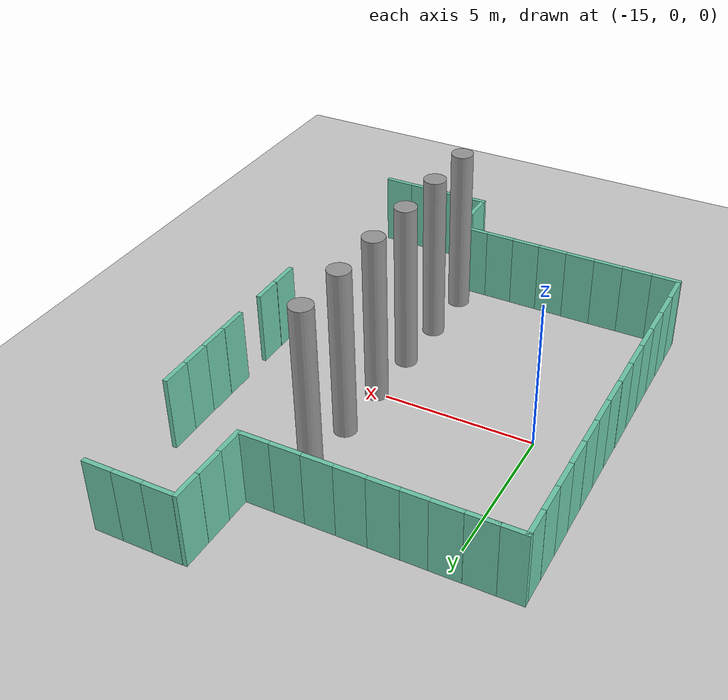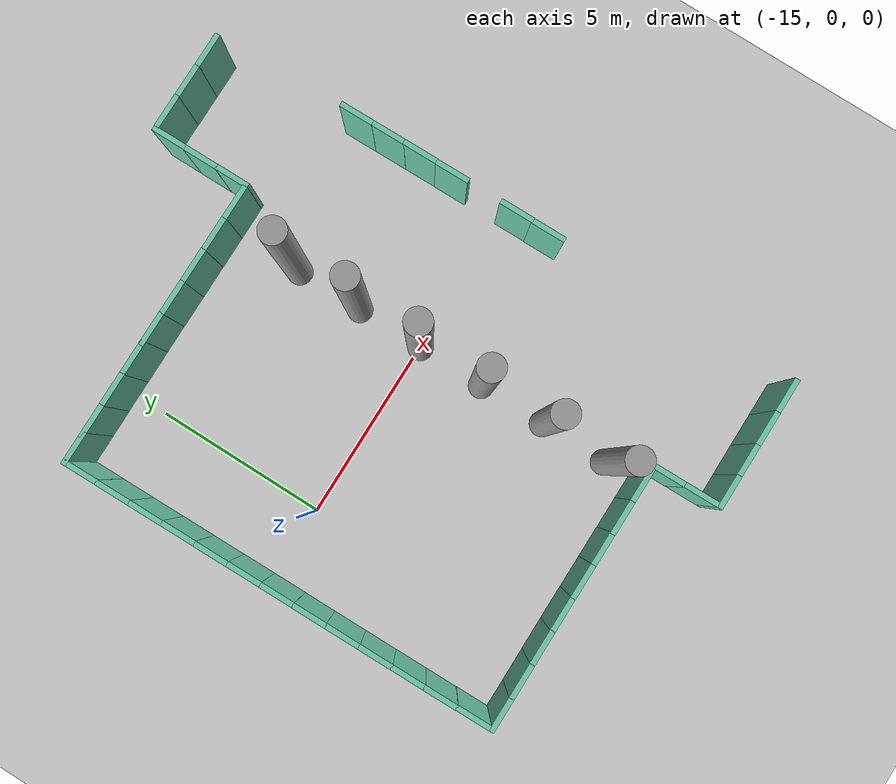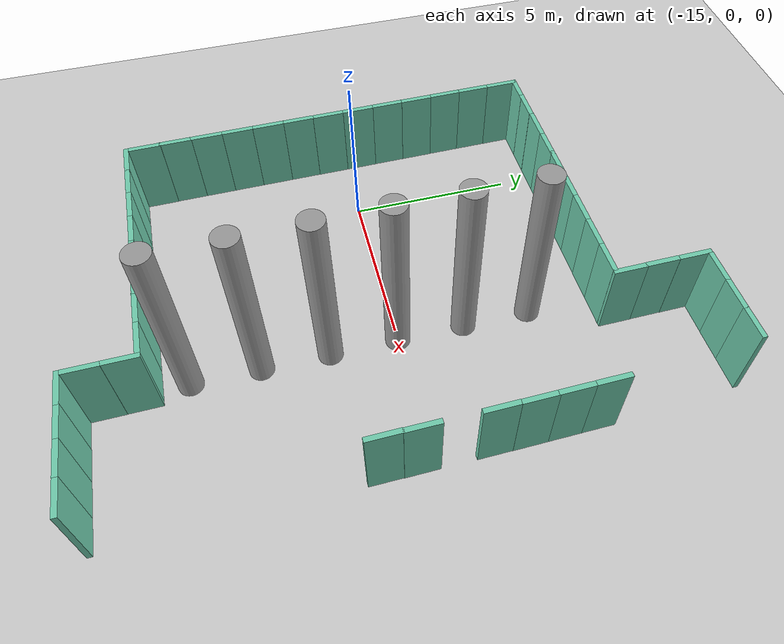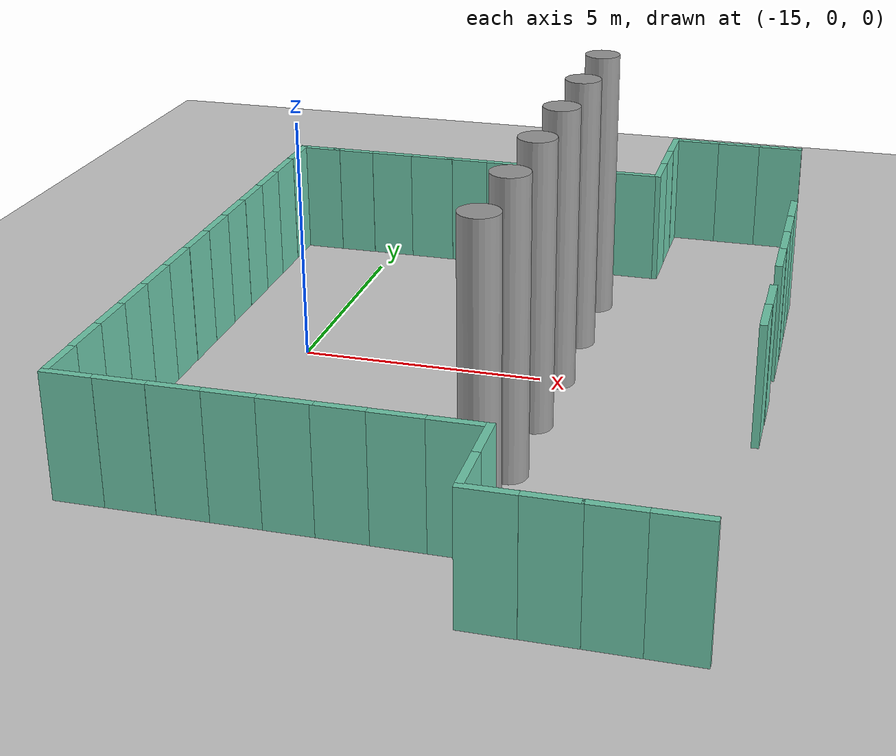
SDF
<sdf version="1.6">
 <world name="default">
  <model name="ground_plane">
   <static>1</static>
   <link name="link">
    <collision name="collision">
     <geometry><plane><normal>0 0 1</normal><size>100 100</size></plane></geometry>
     <surface><friction><ode><mu>100</mu><mu2>50</mu2></ode></friction></surface>
    </collision>
    <visual name="visual">
     <cast_shadows>0</cast_shadows>
     <geometry><plane><normal>0 0 1</normal><size>100 100</size></plane></geometry>
     <material>
      <script><uri>file://media/materials/scripts/gazebo.material</uri><name>Gazebo/Grey</name></script>
     </material>
    </visual>
   </link>
  </model>
  <model name="wall1m_0_clone_8_clone_9_clone_clone_11">
   <pose>-5.50391 3.57304 0 0 0 -1.56</pose>
   <link name="Wall_2">
    <collision name="Wall_2_Collision">
     <geometry><box><size>1 0.15 2.5</size></box></geometry>
     <pose>0 0 1.25 0 -0 0</pose>
    </collision>
    <visual name="Wall_2_Visual">
     <pose>0 0 1.25 0 -0 0</pose>
     <geometry><box><size>1 0.15 2.5</size></box></geometry>
     <material>
      <script><uri>file://media/materials/scripts/gazebo.material</uri><name>Gazebo/Grey</name></script>
      <ambient>0.435294 0.796078 0.67451 1</ambient>
     </material>
     <meta><layer>0</layer></meta>
    </visual>
   </link>
   <static>1</static>
  </model>
  <model name="wall1m_0_clone_8_clone_9_clone_clone_12">
   <pose>-5.49192 2.60858 0 0 0 -1.56</pose>
   <link name="Wall_2">
    <collision name="Wall_2_Collision">
     <geometry><box><size>1 0.15 2.5</size></box></geometry>
     <pose>0 0 1.25 0 -0 0</pose>
    </collision>
    <visual name="Wall_2_Visual">
     <pose>0 0 1.25 0 -0 0</pose>
     <geometry><box><size>1 0.15 2.5</size></box></geometry>
     <material>
      <script><uri>file://media/materials/scripts/gazebo.material</uri><name>Gazebo/Grey</name></script>
      <ambient>0.435294 0.796078 0.67451 1</ambient>
     </material>
     <meta><layer>0</layer></meta>
    </visual>
   </link>
   <static>1</static>
  </model>
  <model name="wall1m_0_clone_8_clone_9_clone_clone_13">
   <pose>-5.48641 1.61058 0 0 0 -1.56</pose>
   <link name="Wall_2">
    <collision name="Wall_2_Collision">
     <geometry><box><size>1 0.15 2.5</size></box></geometry>
     <pose>0 0 1.25 0 -0 0</pose>
    </collision>
    <visual name="Wall_2_Visual">
     <pose>0 0 1.25 0 -0 0</pose>
     <geometry><box><size>1 0.15 2.5</size></box></geometry>
     <material>
      <script><uri>file://media/materials/scripts/gazebo.material</uri><name>Gazebo/Grey</name></script>
      <ambient>0.435294 0.796078 0.67451 1</ambient>
     </material>
     <meta><layer>0</layer></meta>
    </visual>
   </link>
   <static>1</static>
  </model>
  <model name="wall1m_0_clone_8_clone_9_clone_clone_15">
   <pose>-5.47664 -0.377289 0 0 0 -1.56</pose>
   <link name="Wall_2">
    <collision name="Wall_2_Collision">
     <geometry><box><size>1 0.15 2.5</size></box></geometry>
     <pose>0 0 1.25 0 -0 0</pose>
    </collision>
    <visual name="Wall_2_Visual">
     <pose>0 0 1.25 0 -0 0</pose>
     <geometry><box><size>1 0.15 2.5</size></box></geometry>
     <material>
      <script><uri>file://media/materials/scripts/gazebo.material</uri><name>Gazebo/Grey</name></script>
      <ambient>0.435294 0.796078 0.67451 1</ambient>
     </material>
     <meta><layer>0</layer></meta>
    </visual>
   </link>
   <static>1</static>
  </model>
  <model name="wall1m_0_clone_8_clone_9_clone_clone_16">
   <pose>-5.47622 -1.34647 0 0 0 -1.56</pose>
   <link name="Wall_2">
    <collision name="Wall_2_Collision">
     <geometry><box><size>1 0.15 2.5</size></box></geometry>
     <pose>0 0 1.25 0 -0 0</pose>
    </collision>
    <visual name="Wall_2_Visual">
     <pose>0 0 1.25 0 -0 0</pose>
     <geometry><box><size>1 0.15 2.5</size></box></geometry>
     <material>
      <script><uri>file://media/materials/scripts/gazebo.material</uri><name>Gazebo/Grey</name></script>
      <ambient>0.435294 0.796078 0.67451 1</ambient>
     </material>
     <meta><layer>0</layer></meta>
    </visual>
   </link>
   <static>1</static>
  </model>
  <model name="wall1m_0_clone_8_clone_9_clone_clone_26">
   <pose>-8.67069 6.41348 0 0 0 -1.5658</pose>
   <link name="Wall_2">
    <collision name="Wall_2_Collision">
     <geometry><box><size>1 0.15 2.5</size></box></geometry>
     <pose>0 0 1.25 0 -0 0</pose>
    </collision>
    <visual name="Wall_2_Visual">
     <pose>0 0 1.25 0 -0 0</pose>
     <geometry><box><size>1 0.15 2.5</size></box></geometry>
     <material>
      <script><uri>file://media/materials/scripts/gazebo.material</uri><name>Gazebo/Grey</name></script>
      <ambient>0.435294 0.796078 0.67451 1</ambient>
     </material>
     <meta><layer>0</layer></meta>
    </visual>
   </link>
   <static>1</static>
  </model>
  <model name="wall1m_0_clone_8_clone_9_clone_clone_27">
   <pose>-8.68063 7.3869 0 0 0 -1.5658</pose>
   <link name="Wall_2">
    <collision name="Wall_2_Collision">
     <geometry><box><size>1 0.15 2.5</size></box></geometry>
     <pose>0 0 1.25 0 -0 0</pose>
    </collision>
    <visual name="Wall_2_Visual">
     <pose>0 0 1.25 0 -0 0</pose>
     <geometry><box><size>1 0.15 2.5</size></box></geometry>
     <material>
      <script><uri>file://media/materials/scripts/gazebo.material</uri><name>Gazebo/Grey</name></script>
      <ambient>0.435294 0.796078 0.67451 1</ambient>
     </material>
     <meta><layer>0</layer></meta>
    </visual>
   </link>
   <static>1</static>
  </model>
  <model name="wall1m_0_clone_8_clone_9_clone_clone_28">
   <pose>-8.68183 8.38093 0 0 0 -1.5658</pose>
   <link name="Wall_2">
    <collision name="Wall_2_Collision">
     <geometry><box><size>1 0.15 2.5</size></box></geometry>
     <pose>0 0 1.25 0 -0 0</pose>
    </collision>
    <visual name="Wall_2_Visual">
     <pose>0 0 1.25 0 -0 0</pose>
     <geometry><box><size>1 0.15 2.5</size></box></geometry>
     <material>
      <script><uri>file://media/materials/scripts/gazebo.material</uri><name>Gazebo/Grey</name></script>
      <ambient>0.435294 0.796078 0.67451 1</ambient>
     </material>
     <meta><layer>0</layer></meta>
    </visual>
   </link>
   <static>1</static>
  </model>
  <model name="wall1m_0_clone_8_clone_clone">
   <pose>-8.1226 8.81472 0 0 -0 0</pose>
   <link name="Wall_2">
    <collision name="Wall_2_Collision">
     <geometry><box><size>1 0.15 2.5</size></box></geometry>
     <pose>0 0 1.25 0 -0 0</pose>
    </collision>
    <visual name="Wall_2_Visual">
     <pose>0 0 1.25 0 -0 0</pose>
     <geometry><box><size>1 0.15 2.5</size></box></geometry>
     <material>
      <script><uri>file://media/materials/scripts/gazebo.material</uri><name>Gazebo/Grey</name></script>
      <ambient>0.435294 0.796078 0.67451 1</ambient>
     </material>
     <meta><layer>0</layer></meta>
    </visual>
   </link>
   <static>1</static>
  </model>
  <model name="wall1m_0_clone_8_clone_clone_0">
   <pose>-7.14062 8.80997 0 0 -0 0</pose>
   <link name="Wall_2">
    <collision name="Wall_2_Collision">
     <geometry><box><size>1 0.15 2.5</size></box></geometry>
     <pose>0 0 1.25 0 -0 0</pose>
    </collision>
    <visual name="Wall_2_Visual">
     <pose>0 0 1.25 0 -0 0</pose>
     <geometry><box><size>1 0.15 2.5</size></box></geometry>
     <material>
      <script><uri>file://media/materials/scripts/gazebo.material</uri><name>Gazebo/Grey</name></script>
      <ambient>0.435294 0.796078 0.67451 1</ambient>
     </material>
     <meta><layer>0</layer></meta>
    </visual>
   </link>
   <static>1</static>
  </model>
  <model name="wall1m_0_clone_8_clone_clone_1">
   <pose>-6.17103 8.8091 0 0 -0 0</pose>
   <link name="Wall_2">
    <collision name="Wall_2_Collision">
     <geometry><box><size>1 0.15 2.5</size></box></geometry>
     <pose>0 0 1.25 0 -0 0</pose>
    </collision>
    <visual name="Wall_2_Visual">
     <pose>0 0 1.25 0 -0 0</pose>
     <geometry><box><size>1 0.15 2.5</size></box></geometry>
     <material>
      <script><uri>file://media/materials/scripts/gazebo.material</uri><name>Gazebo/Grey</name></script>
      <ambient>0.435294 0.796078 0.67451 1</ambient>
     </material>
     <meta><layer>0</layer></meta>
    </visual>
   </link>
   <static>1</static>
  </model>
  <model name="wall1m_0_clone_8_clone_clone_16">
   <pose>-9.2091 5.98568 0 0 -0 0</pose>
   <link name="Wall_2">
    <collision name="Wall_2_Collision">
     <geometry><box><size>1 0.15 2.5</size></box></geometry>
     <pose>0 0 1.25 0 -0 0</pose>
    </collision>
    <visual name="Wall_2_Visual">
     <pose>0 0 1.25 0 -0 0</pose>
     <geometry><box><size>1 0.15 2.5</size></box></geometry>
     <material>
      <script><uri>file://media/materials/scripts/gazebo.material</uri><name>Gazebo/Grey</name></script>
      <ambient>0.435294 0.796078 0.67451 1</ambient>
     </material>
     <meta><layer>0</layer></meta>
    </visual>
   </link>
   <static>1</static>
  </model>
  <model name="wall1m_0_clone_8_clone_clone_17">
   <pose>-10.1906 5.98761 0 0 -0 0</pose>
   <link name="Wall_2">
    <collision name="Wall_2_Collision">
     <geometry><box><size>1 0.15 2.5</size></box></geometry>
     <pose>0 0 1.25 0 -0 0</pose>
    </collision>
    <visual name="Wall_2_Visual">
     <pose>0 0 1.25 0 -0 0</pose>
     <geometry><box><size>1 0.15 2.5</size></box></geometry>
     <material>
      <script><uri>file://media/materials/scripts/gazebo.material</uri><name>Gazebo/Grey</name></script>
      <ambient>0.435294 0.796078 0.67451 1</ambient>
     </material>
     <meta><layer>0</layer></meta>
    </visual>
   </link>
   <static>1</static>
  </model>
  <model name="wall1m_0_clone_8_clone_clone_18">
   <pose>-11.1826 5.99194 0 0 -0 0</pose>
   <link name="Wall_2">
    <collision name="Wall_2_Collision">
     <geometry><box><size>1 0.15 2.5</size></box></geometry>
     <pose>0 0 1.25 0 -0 0</pose>
    </collision>
    <visual name="Wall_2_Visual">
     <pose>0 0 1.25 0 -0 0</pose>
     <geometry><box><size>1 0.15 2.5</size></box></geometry>
     <material>
      <script><uri>file://media/materials/scripts/gazebo.material</uri><name>Gazebo/Grey</name></script>
      <ambient>0.435294 0.796078 0.67451 1</ambient>
     </material>
     <meta><layer>0</layer></meta>
    </visual>
   </link>
   <static>1</static>
  </model>
  <model name="wall1m_0_clone_8_clone_clone_19">
   <pose>-12.1757 5.99367 0 0 -0 0</pose>
   <link name="Wall_2">
    <collision name="Wall_2_Collision">
     <geometry><box><size>1 0.15 2.5</size></box></geometry>
     <pose>0 0 1.25 0 -0 0</pose>
    </collision>
    <visual name="Wall_2_Visual">
     <pose>0 0 1.25 0 -0 0</pose>
     <geometry><box><size>1 0.15 2.5</size></box></geometry>
     <material>
      <script><uri>file://media/materials/scripts/gazebo.material</uri><name>Gazebo/Grey</name></script>
      <ambient>0.435294 0.796078 0.67451 1</ambient>
     </material>
     <meta><layer>0</layer></meta>
    </visual>
   </link>
   <static>1</static>
  </model>
  <model name="wall1m_0_clone_8_clone_clone_20">
   <pose>-13.16 5.99872 0 0 -0 0</pose>
   <link name="Wall_2">
    <collision name="Wall_2_Collision">
     <geometry><box><size>1 0.15 2.5</size></box></geometry>
     <pose>0 0 1.25 0 -0 0</pose>
    </collision>
    <visual name="Wall_2_Visual">
     <pose>0 0 1.25 0 -0 0</pose>
     <geometry><box><size>1 0.15 2.5</size></box></geometry>
     <material>
      <script><uri>file://media/materials/scripts/gazebo.material</uri><name>Gazebo/Grey</name></script>
      <ambient>0.435294 0.796078 0.67451 1</ambient>
     </material>
     <meta><layer>0</layer></meta>
    </visual>
   </link>
   <static>1</static>
  </model>
  <model name="wall1m_0_clone_8_clone_9_clone_clone_10_clone">
   <pose>-17.2139 5.52025 0 0 0 -1.56</pose>
   <link name="Wall_2">
    <collision name="Wall_2_Collision">
     <geometry><box><size>1 0.15 2.5</size></box></geometry>
     <pose>0 0 1.25 0 -0 0</pose>
    </collision>
    <visual name="Wall_2_Visual">
     <pose>0 0 1.25 0 -0 0</pose>
     <geometry><box><size>1 0.15 2.5</size></box></geometry>
     <material>
      <script><uri>file://media/materials/scripts/gazebo.material</uri><name>Gazebo/Grey</name></script>
      <ambient>0.435294 0.796078 0.67451 1</ambient>
     </material>
     <meta><layer>0</layer></meta>
    </visual>
   </link>
   <static>1</static>
  </model>
  <model name="wall1m_0_clone_8_clone_9_clone_clone_10_clone_clone">
   <pose>-17.2057 4.53293 0 0 0 -1.56</pose>
   <link name="Wall_2">
    <collision name="Wall_2_Collision">
     <geometry><box><size>1 0.15 2.5</size></box></geometry>
     <pose>0 0 1.25 0 -0 0</pose>
    </collision>
    <visual name="Wall_2_Visual">
     <pose>0 0 1.25 0 -0 0</pose>
     <geometry><box><size>1 0.15 2.5</size></box></geometry>
     <material>
      <script><uri>file://media/materials/scripts/gazebo.material</uri><name>Gazebo/Grey</name></script>
      <ambient>0.435294 0.796078 0.67451 1</ambient>
     </material>
     <meta><layer>0</layer></meta>
    </visual>
   </link>
   <static>1</static>
  </model>
  <model name="wall1m_0_clone_8_clone_9_clone_clone_10_clone_clone_0">
   <pose>-17.1955 3.53856 0 0 0 -1.56</pose>
   <link name="Wall_2">
    <collision name="Wall_2_Collision">
     <geometry><box><size>1 0.15 2.5</size></box></geometry>
     <pose>0 0 1.25 0 -0 0</pose>
    </collision>
    <visual name="Wall_2_Visual">
     <pose>0 0 1.25 0 -0 0</pose>
     <geometry><box><size>1 0.15 2.5</size></box></geometry>
     <material>
      <script><uri>file://media/materials/scripts/gazebo.material</uri><name>Gazebo/Grey</name></script>
      <ambient>0.435294 0.796078 0.67451 1</ambient>
     </material>
     <meta><layer>0</layer></meta>
    </visual>
   </link>
   <static>1</static>
  </model>
  <model name="wall1m_0_clone_8_clone_9_clone_clone_10_clone_clone_1">
   <pose>-17.1801 2.54474 0 0 0 -1.56</pose>
   <link name="Wall_2">
    <collision name="Wall_2_Collision">
     <geometry><box><size>1 0.15 2.5</size></box></geometry>
     <pose>0 0 1.25 0 -0 0</pose>
    </collision>
    <visual name="Wall_2_Visual">
     <pose>0 0 1.25 0 -0 0</pose>
     <geometry><box><size>1 0.15 2.5</size></box></geometry>
     <material>
      <script><uri>file://media/materials/scripts/gazebo.material</uri><name>Gazebo/Grey</name></script>
      <ambient>0.435294 0.796078 0.67451 1</ambient>
     </material>
     <meta><layer>0</layer></meta>
    </visual>
   </link>
   <static>1</static>
  </model>
  <model name="wall1m_0_clone_8_clone_9_clone_clone_10_clone_clone_2">
   <pose>-17.1716 1.54646 0 0 0 -1.56</pose>
   <link name="Wall_2">
    <collision name="Wall_2_Collision">
     <geometry><box><size>1 0.15 2.5</size></box></geometry>
     <pose>0 0 1.25 0 -0 0</pose>
    </collision>
    <visual name="Wall_2_Visual">
     <pose>0 0 1.25 0 -0 0</pose>
     <geometry><box><size>1 0.15 2.5</size></box></geometry>
     <material>
      <script><uri>file://media/materials/scripts/gazebo.material</uri><name>Gazebo/Grey</name></script>
      <ambient>0.435294 0.796078 0.67451 1</ambient>
     </material>
     <meta><layer>0</layer></meta>
    </visual>
   </link>
   <static>1</static>
  </model>
  <model name="wall1m_0_clone_8_clone_9_clone_clone_10_clone_clone_3">
   <pose>-17.1571 0.560076 0 0 0 -1.56</pose>
   <link name="Wall_2">
    <collision name="Wall_2_Collision">
     <geometry><box><size>1 0.15 2.5</size></box></geometry>
     <pose>0 0 1.25 0 -0 0</pose>
    </collision>
    <visual name="Wall_2_Visual">
     <pose>0 0 1.25 0 -0 0</pose>
     <geometry><box><size>1 0.15 2.5</size></box></geometry>
     <material>
      <script><uri>file://media/materials/scripts/gazebo.material</uri><name>Gazebo/Grey</name></script>
      <ambient>0.435294 0.796078 0.67451 1</ambient>
     </material>
     <meta><layer>0</layer></meta>
    </visual>
   </link>
   <static>1</static>
  </model>
  <model name="wall1m_0_clone_8_clone_9_clone_clone_10_clone_clone_4">
   <pose>-17.1471 -0.432452 0 0 0 -1.56</pose>
   <link name="Wall_2">
    <collision name="Wall_2_Collision">
     <geometry><box><size>1 0.15 2.5</size></box></geometry>
     <pose>0 0 1.25 0 -0 0</pose>
    </collision>
    <visual name="Wall_2_Visual">
     <pose>0 0 1.25 0 -0 0</pose>
     <geometry><box><size>1 0.15 2.5</size></box></geometry>
     <material>
      <script><uri>file://media/materials/scripts/gazebo.material</uri><name>Gazebo/Grey</name></script>
      <ambient>0.435294 0.796078 0.67451 1</ambient>
     </material>
     <meta><layer>0</layer></meta>
    </visual>
   </link>
   <static>1</static>
  </model>
  <model name="wall1m_0_clone_8_clone_9_clone_clone_10_clone_clone_5">
   <pose>-17.1417 -1.41663 0 0 0 -1.56</pose>
   <link name="Wall_2">
    <collision name="Wall_2_Collision">
     <geometry><box><size>1 0.15 2.5</size></box></geometry>
     <pose>0 0 1.25 0 -0 0</pose>
    </collision>
    <visual name="Wall_2_Visual">
     <pose>0 0 1.25 0 -0 0</pose>
     <geometry><box><size>1 0.15 2.5</size></box></geometry>
     <material>
      <script><uri>file://media/materials/scripts/gazebo.material</uri><name>Gazebo/Grey</name></script>
      <ambient>0.435294 0.796078 0.67451 1</ambient>
     </material>
     <meta><layer>0</layer></meta>
    </visual>
   </link>
   <static>1</static>
  </model>
  <model name="wall1m_0_clone_8_clone_9_clone_clone_10_clone_clone_6">
   <pose>-17.1301 -2.39498 0 0 0 -1.56</pose>
   <link name="Wall_2">
    <collision name="Wall_2_Collision">
     <geometry><box><size>1 0.15 2.5</size></box></geometry>
     <pose>0 0 1.25 0 -0 0</pose>
    </collision>
    <visual name="Wall_2_Visual">
     <pose>0 0 1.25 0 -0 0</pose>
     <geometry><box><size>1 0.15 2.5</size></box></geometry>
     <material>
      <script><uri>file://media/materials/scripts/gazebo.material</uri><name>Gazebo/Grey</name></script>
      <ambient>0.435294 0.796078 0.67451 1</ambient>
     </material>
     <meta><layer>0</layer></meta>
    </visual>
   </link>
   <static>1</static>
  </model>
  <model name="wall1m_0_clone_8_clone_9_clone_clone_10_clone_clone_7">
   <pose>-17.1197 -3.3868 0 0 0 -1.56</pose>
   <link name="Wall_2">
    <collision name="Wall_2_Collision">
     <geometry><box><size>1 0.15 2.5</size></box></geometry>
     <pose>0 0 1.25 0 -0 0</pose>
    </collision>
    <visual name="Wall_2_Visual">
     <pose>0 0 1.25 0 -0 0</pose>
     <geometry><box><size>1 0.15 2.5</size></box></geometry>
     <material>
      <script><uri>file://media/materials/scripts/gazebo.material</uri><name>Gazebo/Grey</name></script>
      <ambient>0.435294 0.796078 0.67451 1</ambient>
     </material>
     <meta><layer>0</layer></meta>
    </visual>
   </link>
   <static>1</static>
  </model>
  <model name="wall1m_0_clone_8_clone_9_clone_clone_10_clone_clone_8">
   <pose>-17.1079 -4.36747 0 0 0 -1.56</pose>
   <link name="Wall_2">
    <collision name="Wall_2_Collision">
     <geometry><box><size>1 0.15 2.5</size></box></geometry>
     <pose>0 0 1.25 0 -0 0</pose>
    </collision>
    <visual name="Wall_2_Visual">
     <pose>0 0 1.25 0 -0 0</pose>
     <geometry><box><size>1 0.15 2.5</size></box></geometry>
     <material>
      <script><uri>file://media/materials/scripts/gazebo.material</uri><name>Gazebo/Grey</name></script>
      <ambient>0.435294 0.796078 0.67451 1</ambient>
     </material>
     <meta><layer>0</layer></meta>
    </visual>
   </link>
   <static>1</static>
  </model>
  <model name="wall1m_0_clone_8_clone_9_clone_clone_10_clone_clone_9">
   <pose>-17.0974 -5.33176 0 0 0 -1.56</pose>
   <link name="Wall_2">
    <collision name="Wall_2_Collision">
     <geometry><box><size>1 0.15 2.5</size></box></geometry>
     <pose>0 0 1.25 0 -0 0</pose>
    </collision>
    <visual name="Wall_2_Visual">
     <pose>0 0 1.25 0 -0 0</pose>
     <geometry><box><size>1 0.15 2.5</size></box></geometry>
     <material>
      <script><uri>file://media/materials/scripts/gazebo.material</uri><name>Gazebo/Grey</name></script>
      <ambient>0.435294 0.796078 0.67451 1</ambient>
     </material>
     <meta><layer>0</layer></meta>
    </visual>
   </link>
   <static>1</static>
  </model>
  <model name="wall1m_0_clone_8_clone_9_clone_clone_10_clone_clone_10">
   <pose>-17.0774 -6.29609 0 0 0 -1.56</pose>
   <link name="Wall_2">
    <collision name="Wall_2_Collision">
     <geometry><box><size>1 0.15 2.5</size></box></geometry>
     <pose>0 0 1.25 0 -0 0</pose>
    </collision>
    <visual name="Wall_2_Visual">
     <pose>0 0 1.25 0 -0 0</pose>
     <geometry><box><size>1 0.15 2.5</size></box></geometry>
     <material>
      <script><uri>file://media/materials/scripts/gazebo.material</uri><name>Gazebo/Grey</name></script>
      <ambient>0.435294 0.796078 0.67451 1</ambient>
     </material>
     <meta><layer>0</layer></meta>
    </visual>
   </link>
   <static>1</static>
  </model>
  <model name="wall1m_0_clone_8_clone_9_clone_clone_10_clone_clone_11">
   <pose>-5.51625 4.55825 0 0 0 -1.56</pose>
   <link name="Wall_2">
    <collision name="Wall_2_Collision">
     <geometry><box><size>1 0.15 2.5</size></box></geometry>
     <pose>0 0 1.25 0 -0 0</pose>
    </collision>
    <visual name="Wall_2_Visual">
     <pose>0 0 1.25 0 -0 0</pose>
     <geometry><box><size>1 0.15 2.5</size></box></geometry>
     <material>
      <script><uri>file://media/materials/scripts/gazebo.material</uri><name>Gazebo/Grey</name></script>
      <ambient>0.435294 0.796078 0.67451 1</ambient>
     </material>
     <meta><layer>0</layer></meta>
    </visual>
   </link>
   <static>1</static>
  </model>
  <model name="wall1m_0_clone_8_clone_clone_20_clone">
   <pose>-14.0214 5.99612 0 0 -0 0</pose>
   <link name="Wall_2">
    <collision name="Wall_2_Collision">
     <geometry><box><size>1 0.15 2.5</size></box></geometry>
     <pose>0 0 1.25 0 -0 0</pose>
    </collision>
    <visual name="Wall_2_Visual">
     <pose>0 0 1.25 0 -0 0</pose>
     <geometry><box><size>1 0.15 2.5</size></box></geometry>
     <material>
      <script><uri>file://media/materials/scripts/gazebo.material</uri><name>Gazebo/Grey</name></script>
      <ambient>0.435294 0.796078 0.67451 1</ambient>
     </material>
     <meta><layer>0</layer></meta>
    </visual>
   </link>
   <static>1</static>
  </model>
  <model name="wall1m_0_clone_8_clone_clone_20_clone_0">
   <pose>-14.995 5.9971 0 0 -0 0</pose>
   <link name="Wall_2">
    <collision name="Wall_2_Collision">
     <geometry><box><size>1 0.15 2.5</size></box></geometry>
     <pose>0 0 1.25 0 -0 0</pose>
    </collision>
    <visual name="Wall_2_Visual">
     <pose>0 0 1.25 0 -0 0</pose>
     <geometry><box><size>1 0.15 2.5</size></box></geometry>
     <material>
      <script><uri>file://media/materials/scripts/gazebo.material</uri><name>Gazebo/Grey</name></script>
      <ambient>0.435294 0.796078 0.67451 1</ambient>
     </material>
     <meta><layer>0</layer></meta>
    </visual>
   </link>
   <static>1</static>
  </model>
  <model name="wall1m_0_clone_8_clone_clone_20_clone_1">
   <pose>-15.9785 5.99149 0 0 -0 0</pose>
   <link name="Wall_2">
    <collision name="Wall_2_Collision">
     <geometry><box><size>1 0.15 2.5</size></box></geometry>
     <pose>0 0 1.25 0 -0 0</pose>
    </collision>
    <visual name="Wall_2_Visual">
     <pose>0 0 1.25 0 -0 0</pose>
     <geometry><box><size>1 0.15 2.5</size></box></geometry>
     <material>
      <script><uri>file://media/materials/scripts/gazebo.material</uri><name>Gazebo/Grey</name></script>
      <ambient>0.435294 0.796078 0.67451 1</ambient>
     </material>
     <meta><layer>0</layer></meta>
    </visual>
   </link>
   <static>1</static>
  </model>
  <model name="wall1m_0_clone_8_clone_clone_20_clone_2">
   <pose>-16.7987 5.9892 0 0 -0 0</pose>
   <link name="Wall_2">
    <collision name="Wall_2_Collision">
     <geometry><box><size>1 0.15 2.5</size></box></geometry>
     <pose>0 0 1.25 0 -0 0</pose>
    </collision>
    <visual name="Wall_2_Visual">
     <pose>0 0 1.25 0 -0 0</pose>
     <geometry><box><size>1 0.15 2.5</size></box></geometry>
     <material>
      <script><uri>file://media/materials/scripts/gazebo.material</uri><name>Gazebo/Grey</name></script>
      <ambient>0.435294 0.796078 0.67451 1</ambient>
     </material>
     <meta><layer>0</layer></meta>
    </visual>
   </link>
   <static>1</static>
  </model>
  <model name="wall1m_0_clone_8_clone_clone_16_clone">
   <pose>-16.6375 -6.85362 0 0 -0 0</pose>
   <link name="Wall_2">
    <collision name="Wall_2_Collision">
     <geometry><box><size>1 0.15 2.5</size></box></geometry>
     <pose>0 0 1.25 0 -0 0</pose>
    </collision>
    <visual name="Wall_2_Visual">
     <pose>0 0 1.25 0 -0 0</pose>
     <geometry><box><size>1 0.15 2.5</size></box></geometry>
     <material>
      <script><uri>file://media/materials/scripts/gazebo.material</uri><name>Gazebo/Grey</name></script>
      <ambient>0.435294 0.796078 0.67451 1</ambient>
     </material>
     <meta><layer>0</layer></meta>
    </visual>
   </link>
   <static>1</static>
  </model>
  <model name="wall1m_0_clone_8_clone_clone_16_clone_0">
   <pose>-15.6711 -6.85304 0 0 -0 0</pose>
   <link name="Wall_2">
    <collision name="Wall_2_Collision">
     <geometry><box><size>1 0.15 2.5</size></box></geometry>
     <pose>0 0 1.25 0 -0 0</pose>
    </collision>
    <visual name="Wall_2_Visual">
     <pose>0 0 1.25 0 -0 0</pose>
     <geometry><box><size>1 0.15 2.5</size></box></geometry>
     <material>
      <script><uri>file://media/materials/scripts/gazebo.material</uri><name>Gazebo/Grey</name></script>
      <ambient>0.435294 0.796078 0.67451 1</ambient>
     </material>
     <meta><layer>0</layer></meta>
    </visual>
   </link>
   <static>1</static>
  </model>
  <model name="wall1m_0_clone_8_clone_clone_16_clone_1">
   <pose>-14.6749 -6.84882 0 0 -0 0</pose>
   <link name="Wall_2">
    <collision name="Wall_2_Collision">
     <geometry><box><size>1 0.15 2.5</size></box></geometry>
     <pose>0 0 1.25 0 -0 0</pose>
    </collision>
    <visual name="Wall_2_Visual">
     <pose>0 0 1.25 0 -0 0</pose>
     <geometry><box><size>1 0.15 2.5</size></box></geometry>
     <material>
      <script><uri>file://media/materials/scripts/gazebo.material</uri><name>Gazebo/Grey</name></script>
      <ambient>0.435294 0.796078 0.67451 1</ambient>
     </material>
     <meta><layer>0</layer></meta>
    </visual>
   </link>
   <static>1</static>
  </model>
  <model name="wall1m_0_clone_8_clone_clone_16_clone_2">
   <pose>-13.6929 -6.84808 0 0 -0 0</pose>
   <link name="Wall_2">
    <collision name="Wall_2_Collision">
     <geometry><box><size>1 0.15 2.5</size></box></geometry>
     <pose>0 0 1.25 0 -0 0</pose>
    </collision>
    <visual name="Wall_2_Visual">
     <pose>0 0 1.25 0 -0 0</pose>
     <geometry><box><size>1 0.15 2.5</size></box></geometry>
     <material>
      <script><uri>file://media/materials/scripts/gazebo.material</uri><name>Gazebo/Grey</name></script>
      <ambient>0.435294 0.796078 0.67451 1</ambient>
     </material>
     <meta><layer>0</layer></meta>
    </visual>
   </link>
   <static>1</static>
  </model>
  <model name="wall1m_0_clone_8_clone_clone_16_clone_3">
   <pose>-12.7107 -6.85227 0 0 -0 0</pose>
   <link name="Wall_2">
    <collision name="Wall_2_Collision">
     <geometry><box><size>1 0.15 2.5</size></box></geometry>
     <pose>0 0 1.25 0 -0 0</pose>
    </collision>
    <visual name="Wall_2_Visual">
     <pose>0 0 1.25 0 -0 0</pose>
     <geometry><box><size>1 0.15 2.5</size></box></geometry>
     <material>
      <script><uri>file://media/materials/scripts/gazebo.material</uri><name>Gazebo/Grey</name></script>
      <ambient>0.435294 0.796078 0.67451 1</ambient>
     </material>
     <meta><layer>0</layer></meta>
    </visual>
   </link>
   <static>1</static>
  </model>
  <model name="wall1m_0_clone_8_clone_clone_16_clone_4">
   <pose>-11.7645 -6.85395 0 0 -0 0</pose>
   <link name="Wall_2">
    <collision name="Wall_2_Collision">
     <geometry><box><size>1 0.15 2.5</size></box></geometry>
     <pose>0 0 1.25 0 -0 0</pose>
    </collision>
    <visual name="Wall_2_Visual">
     <pose>0 0 1.25 0 -0 0</pose>
     <geometry><box><size>1 0.15 2.5</size></box></geometry>
     <material>
      <script><uri>file://media/materials/scripts/gazebo.material</uri><name>Gazebo/Grey</name></script>
      <ambient>0.435294 0.796078 0.67451 1</ambient>
     </material>
     <meta><layer>0</layer></meta>
    </visual>
   </link>
   <static>1</static>
  </model>
  <model name="wall1m_0_clone_8_clone_clone_16_clone_5">
   <pose>-10.7987 -6.85937 0 0 -0 0</pose>
   <link name="Wall_2">
    <collision name="Wall_2_Collision">
     <geometry><box><size>1 0.15 2.5</size></box></geometry>
     <pose>0 0 1.25 0 -0 0</pose>
    </collision>
    <visual name="Wall_2_Visual">
     <pose>0 0 1.25 0 -0 0</pose>
     <geometry><box><size>1 0.15 2.5</size></box></geometry>
     <material>
      <script><uri>file://media/materials/scripts/gazebo.material</uri><name>Gazebo/Grey</name></script>
      <ambient>0.435294 0.796078 0.67451 1</ambient>
     </material>
     <meta><layer>0</layer></meta>
    </visual>
   </link>
   <static>1</static>
  </model>
  <model name="wall1m_0_clone_8_clone_clone_16_clone_6">
   <pose>-9.80349 -6.85932 0 0 -0 0</pose>
   <link name="Wall_2">
    <collision name="Wall_2_Collision">
     <geometry><box><size>1 0.15 2.5</size></box></geometry>
     <pose>0 0 1.25 0 -0 0</pose>
    </collision>
    <visual name="Wall_2_Visual">
     <pose>0 0 1.25 0 -0 0</pose>
     <geometry><box><size>1 0.15 2.5</size></box></geometry>
     <material>
      <script><uri>file://media/materials/scripts/gazebo.material</uri><name>Gazebo/Grey</name></script>
      <ambient>0.435294 0.796078 0.67451 1</ambient>
     </material>
     <meta><layer>0</layer></meta>
    </visual>
   </link>
   <static>1</static>
  </model>
  <model name="wall1m_0_clone_8_clone_9_clone_clone_19_clone">
   <pose>-9.23375 -7.28364 0 0 0 -1.56</pose>
   <link name="Wall_2">
    <collision name="Wall_2_Collision">
     <geometry><box><size>1 0.15 2.5</size></box></geometry>
     <pose>0 0 1.25 0 -0 0</pose>
    </collision>
    <visual name="Wall_2_Visual">
     <pose>0 0 1.25 0 -0 0</pose>
     <geometry><box><size>1 0.15 2.5</size></box></geometry>
     <material>
      <script><uri>file://media/materials/scripts/gazebo.material</uri><name>Gazebo/Grey</name></script>
      <ambient>0.435294 0.796078 0.67451 1</ambient>
     </material>
     <meta><layer>0</layer></meta>
    </visual>
   </link>
   <static>1</static>
  </model>
  <model name="wall1m_0_clone_8_clone_9_clone_clone_19_clone_0">
   <pose>-9.21945 -8.2767 0 0 0 -1.56</pose>
   <link name="Wall_2">
    <collision name="Wall_2_Collision">
     <geometry><box><size>1 0.15 2.5</size></box></geometry>
     <pose>0 0 1.25 0 -0 0</pose>
    </collision>
    <visual name="Wall_2_Visual">
     <pose>0 0 1.25 0 -0 0</pose>
     <geometry><box><size>1 0.15 2.5</size></box></geometry>
     <material>
      <script><uri>file://media/materials/scripts/gazebo.material</uri><name>Gazebo/Grey</name></script>
      <ambient>0.435294 0.796078 0.67451 1</ambient>
     </material>
     <meta><layer>0</layer></meta>
    </visual>
   </link>
   <static>1</static>
  </model>
  <model name="wall1m_0_clone_8_clone_10">
   <pose>-8.78445 -8.83583 0 0 -0 0</pose>
   <link name="Wall_2">
    <collision name="Wall_2_Collision">
     <geometry><box><size>1 0.15 2.5</size></box></geometry>
     <pose>0 0 1.25 0 -0 0</pose>
    </collision>
    <visual name="Wall_2_Visual">
     <pose>0 0 1.25 0 -0 0</pose>
     <geometry><box><size>1 0.15 2.5</size></box></geometry>
     <material>
      <script><uri>file://media/materials/scripts/gazebo.material</uri><name>Gazebo/Grey</name></script>
      <ambient>0.435294 0.796078 0.67451 1</ambient>
     </material>
     <meta><layer>0</layer></meta>
    </visual>
   </link>
   <static>1</static>
  </model>
  <model name="wall1m_0_clone_8_clone_11">
   <pose>-7.80792 -8.83032 0 0 -0 0</pose>
   <link name="Wall_2">
    <collision name="Wall_2_Collision">
     <geometry><box><size>1 0.15 2.5</size></box></geometry>
     <pose>0 0 1.25 0 -0 0</pose>
    </collision>
    <visual name="Wall_2_Visual">
     <pose>0 0 1.25 0 -0 0</pose>
     <geometry><box><size>1 0.15 2.5</size></box></geometry>
     <material>
      <script><uri>file://media/materials/scripts/gazebo.material</uri><name>Gazebo/Grey</name></script>
      <ambient>0.435294 0.796078 0.67451 1</ambient>
     </material>
     <meta><layer>0</layer></meta>
    </visual>
   </link>
   <static>1</static>
  </model>
  <model name="wall1m_0_clone_8_clone_12">
   <pose>-6.85429 -8.82832 0 0 -0 0</pose>
   <link name="Wall_2">
    <collision name="Wall_2_Collision">
     <geometry><box><size>1 0.15 2.5</size></box></geometry>
     <pose>0 0 1.25 0 -0 0</pose>
    </collision>
    <visual name="Wall_2_Visual">
     <pose>0 0 1.25 0 -0 0</pose>
     <geometry><box><size>1 0.15 2.5</size></box></geometry>
     <material>
      <script><uri>file://media/materials/scripts/gazebo.material</uri><name>Gazebo/Grey</name></script>
      <ambient>0.435294 0.796078 0.67451 1</ambient>
     </material>
     <meta><layer>0</layer></meta>
    </visual>
   </link>
   <static>1</static>
  </model>
  <model name="wall1m_0_clone_8_clone_13">
   <pose>-5.85849 -8.82629 0 0 -0 0</pose>
   <link name="Wall_2">
    <collision name="Wall_2_Collision">
     <geometry><box><size>1 0.15 2.5</size></box></geometry>
     <pose>0 0 1.25 0 -0 0</pose>
    </collision>
    <visual name="Wall_2_Visual">
     <pose>0 0 1.25 0 -0 0</pose>
     <geometry><box><size>1 0.15 2.5</size></box></geometry>
     <material>
      <script><uri>file://media/materials/scripts/gazebo.material</uri><name>Gazebo/Grey</name></script>
      <ambient>0.435294 0.796078 0.67451 1</ambient>
     </material>
     <meta><layer>0</layer></meta>
    </visual>
   </link>
   <static>1</static>
  </model>
  <model name="unit_cylinder_clone">
   <pose>-9.65001 2.00002 2.8743 0 -0 0.001893</pose>
   <link name="unit_cylinder::link">
    <inertial>
     <mass>1</mass>
     <inertia><ixx>0.145833</ixx><ixy>0</ixy><ixz>0</ixz><iyy>0.145833</iyy><iyz>0</iyz><izz>0.125</izz></inertia>
    </inertial>
    <collision name="collision">
     <geometry><cylinder><radius>0.366049</radius><length>5.7486</length></cylinder></geometry>
    </collision>
    <visual name="visual">
     <geometry><cylinder><radius>0.366049</radius><length>5.7486</length></cylinder></geometry>
     <material>
      <script><name>Gazebo/Grey</name><uri>file://media/materials/scripts/gazebo.material</uri></script>
     </material>
    </visual>
   </link>
  </model>
  <model name="unit_cylinder_clone_0">
   <pose>-9.65001 2.6e-05 2.8743 0 -0 0.001856</pose>
   <link name="unit_cylinder::link">
    <inertial>
     <mass>1</mass>
     <inertia><ixx>0.145833</ixx><ixy>0</ixy><ixz>0</ixz><iyy>0.145833</iyy><iyz>0</iyz><izz>0.125</izz></inertia>
    </inertial>
    <collision name="collision">
     <geometry><cylinder><radius>0.366049</radius><length>5.7486</length></cylinder></geometry>
    </collision>
    <visual name="visual">
     <geometry><cylinder><radius>0.366049</radius><length>5.7486</length></cylinder></geometry>
     <material>
      <script><name>Gazebo/Grey</name><uri>file://media/materials/scripts/gazebo.material</uri></script>
     </material>
    </visual>
   </link>
  </model>
  <model name="unit_cylinder_clone_1">
   <pose>-9.65001 -1.99998 2.8743 0 -0 0.001392</pose>
   <link name="unit_cylinder::link">
    <inertial>
     <mass>1</mass>
     <inertia><ixx>0.145833</ixx><ixy>0</ixy><ixz>0</ixz><iyy>0.145833</iyy><iyz>0</iyz><izz>0.125</izz></inertia>
    </inertial>
    <collision name="collision">
     <geometry><cylinder><radius>0.366049</radius><length>5.7486</length></cylinder></geometry>
    </collision>
    <visual name="visual">
     <geometry><cylinder><radius>0.366049</radius><length>5.7486</length></cylinder></geometry>
     <material>
      <script><name>Gazebo/Grey</name><uri>file://media/materials/scripts/gazebo.material</uri></script>
     </material>
    </visual>
   </link>
  </model>
  <model name="unit_cylinder_clone_2">
   <pose>-9.65001 -3.99998 2.8743 0 -0 0.001367</pose>
   <link name="unit_cylinder::link">
    <inertial>
     <mass>1</mass>
     <inertia><ixx>0.145833</ixx><ixy>0</ixy><ixz>0</ixz><iyy>0.145833</iyy><iyz>0</iyz><izz>0.125</izz></inertia>
    </inertial>
    <collision name="collision">
     <geometry><cylinder><radius>0.366049</radius><length>5.7486</length></cylinder></geometry>
    </collision>
    <visual name="visual">
     <geometry><cylinder><radius>0.366049</radius><length>5.7486</length></cylinder></geometry>
     <material>
      <script><name>Gazebo/Grey</name><uri>file://media/materials/scripts/gazebo.material</uri></script>
     </material>
    </visual>
   </link>
  </model>
  <model name="unit_cylinder_clone_3">
   <pose>-9.65001 -5.99998 2.8743 0 -0 0.000837</pose>
   <link name="unit_cylinder::link">
    <inertial>
     <mass>1</mass>
     <inertia><ixx>0.145833</ixx><ixy>0</ixy><ixz>0</ixz><iyy>0.145833</iyy><iyz>0</iyz><izz>0.125</izz></inertia>
    </inertial>
    <collision name="collision">
     <geometry><cylinder><radius>0.366049</radius><length>5.7486</length></cylinder></geometry>
    </collision>
    <visual name="visual">
     <geometry><cylinder><radius>0.366049</radius><length>5.7486</length></cylinder></geometry>
     <material>
      <script><name>Gazebo/Grey</name><uri>file://media/materials/scripts/gazebo.material</uri></script>
     </material>
    </visual>
   </link>
  </model>
  <model name="unit_cylinder_clone_clone">
   <pose>-9.65 4 2.87429 0 -0 0.001877</pose>
   <link name="unit_cylinder::link">
    <inertial>
     <mass>1</mass>
     <inertia><ixx>0.145833</ixx><ixy>0</ixy><ixz>0</ixz><iyy>0.145833</iyy><iyz>0</iyz><izz>0.125</izz></inertia>
    </inertial>
    <collision name="collision">
     <geometry><cylinder><radius>0.366049</radius><length>5.7486</length></cylinder></geometry>
    </collision>
    <visual name="visual">
     <geometry><cylinder><radius>0.366049</radius><length>5.7486</length></cylinder></geometry>
     <material>
      <script><name>Gazebo/Grey</name><uri>file://media/materials/scripts/gazebo.material</uri></script>
     </material>
    </visual>
   </link>
  </model>
 </world>
</sdf>
